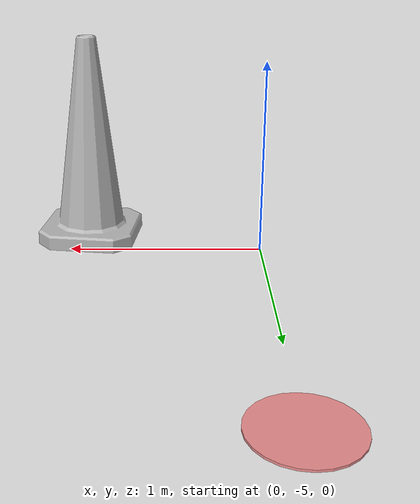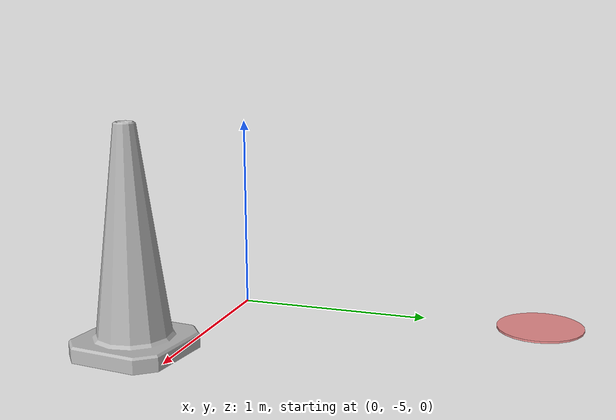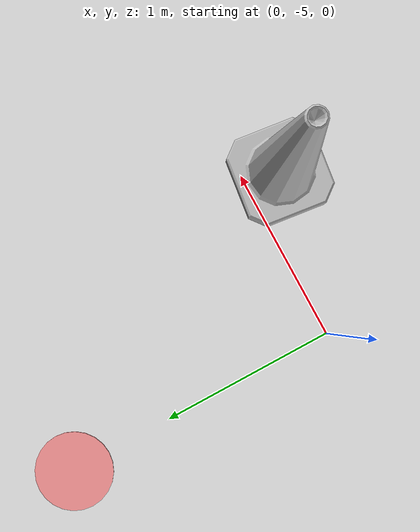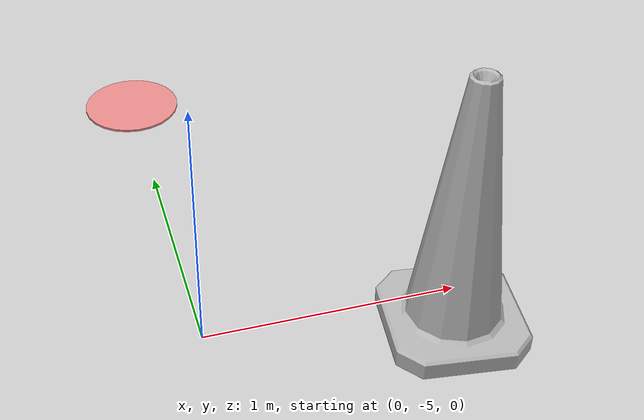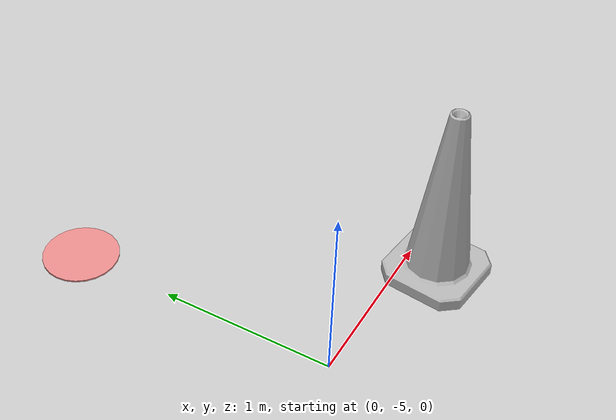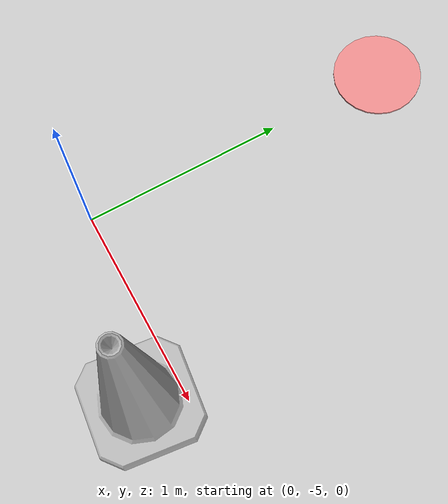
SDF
<sdf version="1.7">
 <world name="default">
  <model name="Construction Cone_clone">
   <link name="link">
    <collision name="collision">
     <pose>0 0 0.17 0 0 0</pose>
     <geometry><cylinder><radius>0.11</radius><length>0.34</length></cylinder></geometry>
    </collision>
    <visual name="visual">
     <geometry>
      <mesh><scale>10 10 10</scale><uri>model://construction_cone/meshes/construction_cone.dae</uri></mesh>
     </geometry>
    </visual>
    <inertial>
     <inertia><ixx>1</ixx><ixy>0</ixy><ixz>0</ixz><iyy>1</iyy><iyz>0</iyz><izz>1</izz></inertia>
     <mass>1</mass>
    </inertial>
   </link>
   <pose>0.909638 -5.19132 0.01 -0 -0 -1.69187</pose>
  </model>
  <model name="impostor_start_marker">
   <static>1</static>
   <link name="link">
    <visual name="disc">
     <geometry><cylinder><radius>0.22</radius><length>0.01</length></cylinder></geometry>
     <material>
      <ambient>0.92 0.55 0.55 1</ambient>
      <diffuse>0.92 0.55 0.55 1</diffuse>
      <specular>0.08 0.08 0.08 1</specular>
      <emissive>0 0 0 1</emissive>
      <pbr><metal><roughness>0.75</roughness><metalness>0</metalness></metal></pbr>
     </material>
    </visual>
   </link>
   <pose>0.0 -3.4 0.012 0 0 0</pose>
  </model>
 </world>
</sdf>
